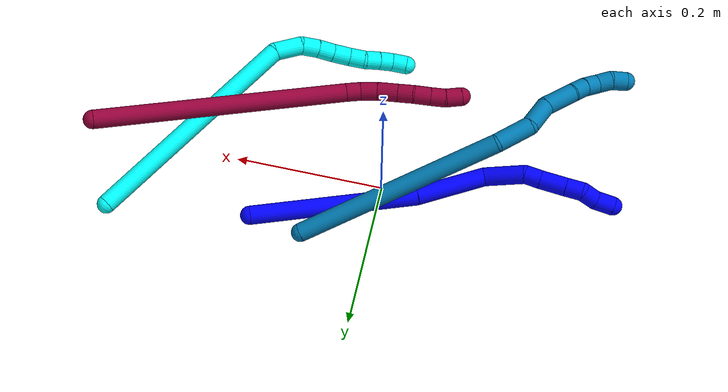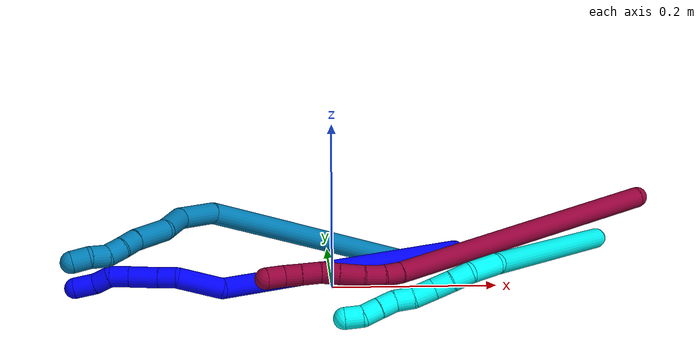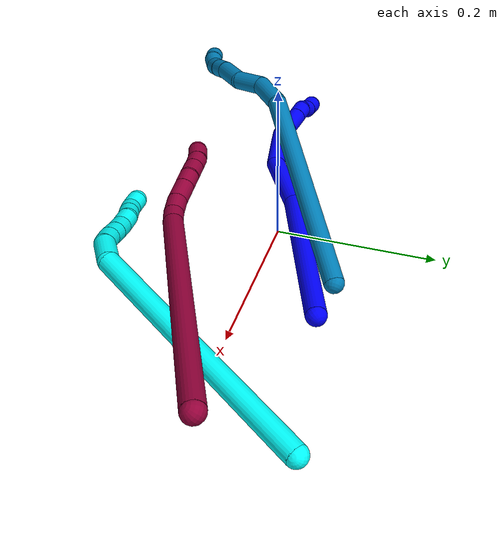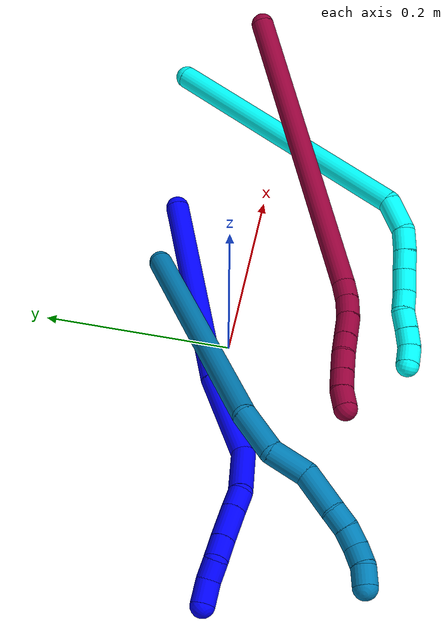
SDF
<sdf version="1.7">
 <world name="default">
  <model name="1">
   <static>0</static>
   <link name="1">
    <collision name="collision-cylinder-e_1_1_4">
     <pose>-0.03766 -0.010787 0.104622 0.102737 -0.343837 -0.017854</pose>
     <geometry><cylinder><radius>0.0125</radius><length>0.223432</length></cylinder></geometry>
     <surface>
      <friction><ode><mu>1.16</mu><mu2>1.16</mu2><slip1>0</slip1><slip2>0</slip2></ode></friction>
      <contact><ode><kp>1e+06</kp><kd>1</kd><max_vel>0</max_vel><min_depth>0.001</min_depth></ode></contact>
     </surface>
    </collision>
    <visual name="visual-cylinder-e_1_1_4">
     <pose>-0.03766 -0.010787 0.104622 0.102737 -0.343837 -0.017854</pose>
     <geometry><cylinder><radius>0.0125</radius><length>0.223432</length></cylinder></geometry>
     <material><ambient>0 0 1 1</ambient></material>
    </visual>
    <collision name="collision-cylinder-e_2_4_5">
     <pose>-0.084102 -0.024829 0.256163 0.069285 -0.184614 -0.006416</pose>
     <geometry><cylinder><radius>0.0125</radius><length>0.095689</length></cylinder></geometry>
     <surface>
      <friction><ode><mu>1.16</mu><mu2>1.16</mu2><slip1>0</slip1><slip2>0</slip2></ode></friction>
      <contact><ode><kp>1e+06</kp><kd>1</kd><max_vel>0</max_vel><min_depth>0.001</min_depth></ode></contact>
     </surface>
    </collision>
    <visual name="visual-cylinder-e_2_4_5">
     <pose>-0.084102 -0.024829 0.256163 0.069285 -0.184614 -0.006416</pose>
     <geometry><cylinder><radius>0.0125</radius><length>0.095689</length></cylinder></geometry>
     <material><ambient>0 0 1 1</ambient></material>
    </visual>
    <collision name="collision-cylinder-e_3_5_6">
     <pose>-0.106857 -0.020778 0.325967 -0.309052 -0.526792 0.08396</pose>
     <geometry><cylinder><radius>0.0125</radius><length>0.055582</length></cylinder></geometry>
     <surface>
      <friction><ode><mu>1.16</mu><mu2>1.16</mu2><slip1>0</slip1><slip2>0</slip2></ode></friction>
      <contact><ode><kp>1e+06</kp><kd>1</kd><max_vel>0</max_vel><min_depth>0.001</min_depth></ode></contact>
     </surface>
    </collision>
    <visual name="visual-cylinder-e_3_5_6">
     <pose>-0.106857 -0.020778 0.325967 -0.309052 -0.526792 0.08396</pose>
     <geometry><cylinder><radius>0.0125</radius><length>0.055582</length></cylinder></geometry>
     <material><ambient>0 0 1 1</ambient></material>
    </visual>
    <collision name="collision-cylinder-e_4_6_7">
     <pose>-0.129013 -0.013522 0.355899 0.007242 -0.859899 -0.003321</pose>
     <geometry><cylinder><radius>0.0125</radius><length>0.021598</length></cylinder></geometry>
     <surface>
      <friction><ode><mu>1.16</mu><mu2>1.16</mu2><slip1>0</slip1><slip2>0</slip2></ode></friction>
      <contact><ode><kp>1e+06</kp><kd>1</kd><max_vel>0</max_vel><min_depth>0.001</min_depth></ode></contact>
     </surface>
    </collision>
    <visual name="visual-cylinder-e_4_6_7">
     <pose>-0.129013 -0.013522 0.355899 0.007242 -0.859899 -0.003321</pose>
     <geometry><cylinder><radius>0.0125</radius><length>0.021598</length></cylinder></geometry>
     <material><ambient>0 0 1 1</ambient></material>
    </visual>
    <collision name="collision-cylinder-e_5_7_8">
     <pose>-0.15005 -0.013111 0.374789 -0.039059 -0.825895 0.017115</pose>
     <geometry><cylinder><radius>0.0125</radius><length>0.034969</length></cylinder></geometry>
     <surface>
      <friction><ode><mu>1.16</mu><mu2>1.16</mu2><slip1>0</slip1><slip2>0</slip2></ode></friction>
      <contact><ode><kp>1e+06</kp><kd>1</kd><max_vel>0</max_vel><min_depth>0.001</min_depth></ode></contact>
     </surface>
    </collision>
    <visual name="visual-cylinder-e_5_7_8">
     <pose>-0.15005 -0.013111 0.374789 -0.039059 -0.825895 0.017115</pose>
     <geometry><cylinder><radius>0.0125</radius><length>0.034969</length></cylinder></geometry>
     <material><ambient>0 0 1 1</ambient></material>
    </visual>
    <collision name="collision-cylinder-e_6_8_9">
     <pose>-0.171082 -0.01248 0.394572 -0.02117 -0.800171 0.008953</pose>
     <geometry><cylinder><radius>0.0125</radius><length>0.022799</length></cylinder></geometry>
     <surface>
      <friction><ode><mu>1.16</mu><mu2>1.16</mu2><slip1>0</slip1><slip2>0</slip2></ode></friction>
      <contact><ode><kp>1e+06</kp><kd>1</kd><max_vel>0</max_vel><min_depth>0.001</min_depth></ode></contact>
     </surface>
    </collision>
    <visual name="visual-cylinder-e_6_8_9">
     <pose>-0.171082 -0.01248 0.394572 -0.02117 -0.800171 0.008953</pose>
     <geometry><cylinder><radius>0.0125</radius><length>0.022799</length></cylinder></geometry>
     <material><ambient>0 0 1 1</ambient></material>
    </visual>
    <collision name="collision-cylinder-e_7_9_10">
     <pose>-0.186984 -0.016809 0.407802 0.704494 -0.838399 -0.324711</pose>
     <geometry><cylinder><radius>0.0125</radius><length>0.020771</length></cylinder></geometry>
     <surface>
      <friction><ode><mu>1.16</mu><mu2>1.16</mu2><slip1>0</slip1><slip2>0</slip2></ode></friction>
      <contact><ode><kp>1e+06</kp><kd>1</kd><max_vel>0</max_vel><min_depth>0.001</min_depth></ode></contact>
     </surface>
    </collision>
    <visual name="visual-cylinder-e_7_9_10">
     <pose>-0.186984 -0.016809 0.407802 0.704494 -0.838399 -0.324711</pose>
     <geometry><cylinder><radius>0.0125</radius><length>0.020771</length></cylinder></geometry>
     <material><ambient>0 0 1 1</ambient></material>
    </visual>
    <collision name="collision-cylinder-e_8_10_2">
     <pose>-0.203308 -0.023976 0.421876 0.295028 -0.752873 -0.117339</pose>
     <geometry><cylinder><radius>0.0125</radius><length>0.025159</length></cylinder></geometry>
     <surface>
      <friction><ode><mu>1.16</mu><mu2>1.16</mu2><slip1>0</slip1><slip2>0</slip2></ode></friction>
      <contact><ode><kp>1e+06</kp><kd>1</kd><max_vel>0</max_vel><min_depth>0.001</min_depth></ode></contact>
     </surface>
    </collision>
    <visual name="visual-cylinder-e_8_10_2">
     <pose>-0.203308 -0.023976 0.421876 0.295028 -0.752873 -0.117339</pose>
     <geometry><cylinder><radius>0.0125</radius><length>0.025159</length></cylinder></geometry>
     <material><ambient>0 0 1 1</ambient></material>
    </visual>
    <collision name="collision-sphere-2">
     <pose>-0.211909 -0.026645 0.430659 0 -0 0</pose>
     <geometry><sphere><radius>0.0125</radius></sphere></geometry>
     <surface>
      <friction><ode><mu>1.16</mu><mu2>1.16</mu2><slip1>0</slip1><slip2>0</slip2></ode></friction>
      <contact><ode><kp>1e+06</kp><kd>1</kd><max_vel>0</max_vel><min_depth>0.001</min_depth></ode></contact>
     </surface>
    </collision>
    <visual name="visual-sphere-2">
     <pose>-0.211909 -0.026645 0.430659 0 -0 0</pose>
     <geometry><sphere><radius>0.0125</radius></sphere></geometry>
     <material><ambient>0 0 1 1</ambient></material>
    </visual>
    <collision name="collision-sphere-10">
     <pose>-0.194706 -0.021307 0.413093 0 -0 0</pose>
     <geometry><sphere><radius>0.0125</radius></sphere></geometry>
     <surface>
      <friction><ode><mu>1.16</mu><mu2>1.16</mu2><slip1>0</slip1><slip2>0</slip2></ode></friction>
      <contact><ode><kp>1e+06</kp><kd>1</kd><max_vel>0</max_vel><min_depth>0.001</min_depth></ode></contact>
     </surface>
    </collision>
    <visual name="visual-sphere-10">
     <pose>-0.194706 -0.021307 0.413093 0 -0 0</pose>
     <geometry><sphere><radius>0.0125</radius></sphere></geometry>
     <material><ambient>0 0 1 1</ambient></material>
    </visual>
    <collision name="collision-sphere-9">
     <pose>-0.179261 -0.012312 0.402511 0 -0 0</pose>
     <geometry><sphere><radius>0.0125</radius></sphere></geometry>
     <surface>
      <friction><ode><mu>1.16</mu><mu2>1.16</mu2><slip1>0</slip1><slip2>0</slip2></ode></friction>
      <contact><ode><kp>1e+06</kp><kd>1</kd><max_vel>0</max_vel><min_depth>0.001</min_depth></ode></contact>
     </surface>
    </collision>
    <visual name="visual-sphere-9">
     <pose>-0.179261 -0.012312 0.402511 0 -0 0</pose>
     <geometry><sphere><radius>0.0125</radius></sphere></geometry>
     <material><ambient>0 0 1 1</ambient></material>
    </visual>
    <collision name="collision-sphere-4">
     <pose>-0.075319 -0.021573 0.209245 0 -0 0</pose>
     <geometry><sphere><radius>0.0125</radius></sphere></geometry>
     <surface>
      <friction><ode><mu>1.16</mu><mu2>1.16</mu2><slip1>0</slip1><slip2>0</slip2></ode></friction>
      <contact><ode><kp>1e+06</kp><kd>1</kd><max_vel>0</max_vel><min_depth>0.001</min_depth></ode></contact>
     </surface>
    </collision>
    <visual name="visual-sphere-4">
     <pose>-0.075319 -0.021573 0.209245 0 -0 0</pose>
     <geometry><sphere><radius>0.0125</radius></sphere></geometry>
     <material><ambient>0 0 1 1</ambient></material>
    </visual>
    <collision name="collision-sphere-1">
     <geometry><sphere><radius>0.0125</radius></sphere></geometry>
     <surface>
      <friction><ode><mu>1.16</mu><mu2>1.16</mu2><slip1>0</slip1><slip2>0</slip2></ode></friction>
      <contact><ode><kp>1e+06</kp><kd>1</kd><max_vel>0</max_vel><min_depth>0.001</min_depth></ode></contact>
     </surface>
    </collision>
    <visual name="visual-sphere-1">
     <geometry><sphere><radius>0.0125</radius></sphere></geometry>
     <material><ambient>0 0 1 1</ambient></material>
    </visual>
    <collision name="collision-sphere-8">
     <pose>-0.162903 -0.012648 0.386632 0 -0 0</pose>
     <geometry><sphere><radius>0.0125</radius></sphere></geometry>
     <surface>
      <friction><ode><mu>1.16</mu><mu2>1.16</mu2><slip1>0</slip1><slip2>0</slip2></ode></friction>
      <contact><ode><kp>1e+06</kp><kd>1</kd><max_vel>0</max_vel><min_depth>0.001</min_depth></ode></contact>
     </surface>
    </collision>
    <visual name="visual-sphere-8">
     <pose>-0.162903 -0.012648 0.386632 0 -0 0</pose>
     <geometry><sphere><radius>0.0125</radius></sphere></geometry>
     <material><ambient>0 0 1 1</ambient></material>
    </visual>
    <collision name="collision-sphere-5">
     <pose>-0.092885 -0.028085 0.303082 0 -0 0</pose>
     <geometry><sphere><radius>0.0125</radius></sphere></geometry>
     <surface>
      <friction><ode><mu>1.16</mu><mu2>1.16</mu2><slip1>0</slip1><slip2>0</slip2></ode></friction>
      <contact><ode><kp>1e+06</kp><kd>1</kd><max_vel>0</max_vel><min_depth>0.001</min_depth></ode></contact>
     </surface>
    </collision>
    <visual name="visual-sphere-5">
     <pose>-0.092885 -0.028085 0.303082 0 -0 0</pose>
     <geometry><sphere><radius>0.0125</radius></sphere></geometry>
     <material><ambient>0 0 1 1</ambient></material>
    </visual>
    <collision name="collision-sphere-6">
     <pose>-0.120829 -0.013471 0.348852 0 -0 0</pose>
     <geometry><sphere><radius>0.0125</radius></sphere></geometry>
     <surface>
      <friction><ode><mu>1.16</mu><mu2>1.16</mu2><slip1>0</slip1><slip2>0</slip2></ode></friction>
      <contact><ode><kp>1e+06</kp><kd>1</kd><max_vel>0</max_vel><min_depth>0.001</min_depth></ode></contact>
     </surface>
    </collision>
    <visual name="visual-sphere-6">
     <pose>-0.120829 -0.013471 0.348852 0 -0 0</pose>
     <geometry><sphere><radius>0.0125</radius></sphere></geometry>
     <material><ambient>0 0 1 1</ambient></material>
    </visual>
    <collision name="collision-sphere-7">
     <pose>-0.137196 -0.013574 0.362945 0 -0 0</pose>
     <geometry><sphere><radius>0.0125</radius></sphere></geometry>
     <surface>
      <friction><ode><mu>1.16</mu><mu2>1.16</mu2><slip1>0</slip1><slip2>0</slip2></ode></friction>
      <contact><ode><kp>1e+06</kp><kd>1</kd><max_vel>0</max_vel><min_depth>0.001</min_depth></ode></contact>
     </surface>
    </collision>
    <visual name="visual-sphere-7">
     <pose>-0.137196 -0.013574 0.362945 0 -0 0</pose>
     <geometry><sphere><radius>0.0125</radius></sphere></geometry>
     <material><ambient>0 0 1 1</ambient></material>
    </visual>
    <inertial>
     <pose>-0.086669 -0.015856 0.229759 0 -0 0</pose>
     <mass>0.5</mass>
     <inertia>
      <ixx>0.000949</ixx>
      <ixy>0</ixy>
      <ixz>0</ixz>
      <iyy>0.001021</iyy>
      <iyz>0</iyz>
      <izz>0.000474</izz>
     </inertia>
    </inertial>
   </link>
   <pose>0.157966 0.089884 0.022981 1.48915 -0.088796 -0.851426</pose>
  </model>
  <model name="3">
   <static>0</static>
   <link name="3">
    <collision name="collision-cylinder-e_1_1_4">
     <pose>-0.094657 -0.115623 -0.038497 1.8922 -0.660398 -0.887492</pose>
     <geometry><cylinder><radius>0.0125</radius><length>0.308615</length></cylinder></geometry>
     <surface>
      <friction><ode><mu>1.16</mu><mu2>1.16</mu2><slip1>0</slip1><slip2>0</slip2></ode></friction>
      <contact><ode><kp>1e+06</kp><kd>1</kd><max_vel>0</max_vel><min_depth>0.001</min_depth></ode></contact>
     </surface>
    </collision>
    <visual name="visual-cylinder-e_1_1_4">
     <pose>-0.094657 -0.115623 -0.038497 1.8922 -0.660398 -0.887492</pose>
     <geometry><cylinder><radius>0.0125</radius><length>0.308615</length></cylinder></geometry>
     <material><ambient>0.003922 1 0.996078 1</ambient></material>
    </visual>
    <collision name="collision-cylinder-e_2_4_5">
     <pose>-0.200328 -0.240581 -0.089527 2.50141 -0.613937 -1.52607</pose>
     <geometry><cylinder><radius>0.0125</radius><length>0.038236</length></cylinder></geometry>
     <surface>
      <friction><ode><mu>1.16</mu><mu2>1.16</mu2><slip1>0</slip1><slip2>0</slip2></ode></friction>
      <contact><ode><kp>1e+06</kp><kd>1</kd><max_vel>0</max_vel><min_depth>0.001</min_depth></ode></contact>
     </surface>
    </collision>
    <visual name="visual-cylinder-e_2_4_5">
     <pose>-0.200328 -0.240581 -0.089527 2.50141 -0.613937 -1.52607</pose>
     <geometry><cylinder><radius>0.0125</radius><length>0.038236</length></cylinder></geometry>
     <material><ambient>0.003922 1 0.996078 1</ambient></material>
    </visual>
    <collision name="collision-cylinder-e_3_5_6">
     <pose>-0.216016 -0.252771 -0.112659 2.87846 -0.402575 -1.99091</pose>
     <geometry><cylinder><radius>0.0125</radius><length>0.023864</length></cylinder></geometry>
     <surface>
      <friction><ode><mu>1.16</mu><mu2>1.16</mu2><slip1>0</slip1><slip2>0</slip2></ode></friction>
      <contact><ode><kp>1e+06</kp><kd>1</kd><max_vel>0</max_vel><min_depth>0.001</min_depth></ode></contact>
     </surface>
    </collision>
    <visual name="visual-cylinder-e_3_5_6">
     <pose>-0.216016 -0.252771 -0.112659 2.87846 -0.402575 -1.99091</pose>
     <geometry><cylinder><radius>0.0125</radius><length>0.023864</length></cylinder></geometry>
     <material><ambient>0.003922 1 0.996078 1</ambient></material>
    </visual>
    <collision name="collision-cylinder-e_4_6_7">
     <pose>-0.224608 -0.257165 -0.133328 2.99003 -0.367172 -2.36525</pose>
     <geometry><cylinder><radius>0.0125</radius><length>0.021825</length></cylinder></geometry>
     <surface>
      <friction><ode><mu>1.16</mu><mu2>1.16</mu2><slip1>0</slip1><slip2>0</slip2></ode></friction>
      <contact><ode><kp>1e+06</kp><kd>1</kd><max_vel>0</max_vel><min_depth>0.001</min_depth></ode></contact>
     </surface>
    </collision>
    <visual name="visual-cylinder-e_4_6_7">
     <pose>-0.224608 -0.257165 -0.133328 2.99003 -0.367172 -2.36525</pose>
     <geometry><cylinder><radius>0.0125</radius><length>0.021825</length></cylinder></geometry>
     <material><ambient>0.003922 1 0.996078 1</ambient></material>
    </visual>
    <collision name="collision-cylinder-e_5_7_8">
     <pose>-0.233245 -0.260863 -0.154565 2.95052 -0.393285 -2.2449</pose>
     <geometry><cylinder><radius>0.0125</radius><length>0.024634</length></cylinder></geometry>
     <surface>
      <friction><ode><mu>1.16</mu><mu2>1.16</mu2><slip1>0</slip1><slip2>0</slip2></ode></friction>
      <contact><ode><kp>1e+06</kp><kd>1</kd><max_vel>0</max_vel><min_depth>0.001</min_depth></ode></contact>
     </surface>
    </collision>
    <visual name="visual-cylinder-e_5_7_8">
     <pose>-0.233245 -0.260863 -0.154565 2.95052 -0.393285 -2.2449</pose>
     <geometry><cylinder><radius>0.0125</radius><length>0.024634</length></cylinder></geometry>
     <material><ambient>0.003922 1 0.996078 1</ambient></material>
    </visual>
    <collision name="collision-cylinder-e_6_8_9">
     <pose>-0.243979 -0.263433 -0.174745 3.09616 -0.588034 -2.9918</pose>
     <geometry><cylinder><radius>0.0125</radius><length>0.021681</length></cylinder></geometry>
     <surface>
      <friction><ode><mu>1.16</mu><mu2>1.16</mu2><slip1>0</slip1><slip2>0</slip2></ode></friction>
      <contact><ode><kp>1e+06</kp><kd>1</kd><max_vel>0</max_vel><min_depth>0.001</min_depth></ode></contact>
     </surface>
    </collision>
    <visual name="visual-cylinder-e_6_8_9">
     <pose>-0.243979 -0.263433 -0.174745 3.09616 -0.588034 -2.9918</pose>
     <geometry><cylinder><radius>0.0125</radius><length>0.021681</length></cylinder></geometry>
     <material><ambient>0.003922 1 0.996078 1</ambient></material>
    </visual>
    <collision name="collision-cylinder-e_7_9_10">
     <pose>-0.254265 -0.267314 -0.192274 2.75456 -0.434798 -1.69023</pose>
     <geometry><cylinder><radius>0.0125</radius><length>0.020284</length></cylinder></geometry>
     <surface>
      <friction><ode><mu>1.16</mu><mu2>1.16</mu2><slip1>0</slip1><slip2>0</slip2></ode></friction>
      <contact><ode><kp>1e+06</kp><kd>1</kd><max_vel>0</max_vel><min_depth>0.001</min_depth></ode></contact>
     </surface>
    </collision>
    <visual name="visual-cylinder-e_7_9_10">
     <pose>-0.254265 -0.267314 -0.192274 2.75456 -0.434798 -1.69023</pose>
     <geometry><cylinder><radius>0.0125</radius><length>0.020284</length></cylinder></geometry>
     <material><ambient>0.003922 1 0.996078 1</ambient></material>
    </visual>
    <collision name="collision-cylinder-e_8_10_11">
     <pose>-0.262484 -0.273905 -0.209476 2.7968 -0.404207 -1.73282</pose>
     <geometry><cylinder><radius>0.0125</radius><length>0.020073</length></cylinder></geometry>
     <surface>
      <friction><ode><mu>1.16</mu><mu2>1.16</mu2><slip1>0</slip1><slip2>0</slip2></ode></friction>
      <contact><ode><kp>1e+06</kp><kd>1</kd><max_vel>0</max_vel><min_depth>0.001</min_depth></ode></contact>
     </surface>
    </collision>
    <visual name="visual-cylinder-e_8_10_11">
     <pose>-0.262484 -0.273905 -0.209476 2.7968 -0.404207 -1.73282</pose>
     <geometry><cylinder><radius>0.0125</radius><length>0.020073</length></cylinder></geometry>
     <material><ambient>0.003922 1 0.996078 1</ambient></material>
    </visual>
    <collision name="collision-cylinder-e_9_11_2">
     <pose>-0.272549 -0.276958 -0.226564 -3.13369 -0.629278 3.11731</pose>
     <geometry><cylinder><radius>0.0125</radius><length>0.020789</length></cylinder></geometry>
     <surface>
      <friction><ode><mu>1.16</mu><mu2>1.16</mu2><slip1>0</slip1><slip2>0</slip2></ode></friction>
      <contact><ode><kp>1e+06</kp><kd>1</kd><max_vel>0</max_vel><min_depth>0.001</min_depth></ode></contact>
     </surface>
    </collision>
    <visual name="visual-cylinder-e_9_11_2">
     <pose>-0.272549 -0.276958 -0.226564 -3.13369 -0.629278 3.11731</pose>
     <geometry><cylinder><radius>0.0125</radius><length>0.020789</length></cylinder></geometry>
     <material><ambient>0.003922 1 0.996078 1</ambient></material>
    </visual>
    <collision name="collision-sphere-2">
     <pose>-0.278667 -0.276892 -0.234967 0 -0 0</pose>
     <geometry><sphere><radius>0.0125</radius></sphere></geometry>
     <surface>
      <friction><ode><mu>1.16</mu><mu2>1.16</mu2><slip1>0</slip1><slip2>0</slip2></ode></friction>
      <contact><ode><kp>1e+06</kp><kd>1</kd><max_vel>0</max_vel><min_depth>0.001</min_depth></ode></contact>
     </surface>
    </collision>
    <visual name="visual-sphere-2">
     <pose>-0.278667 -0.276892 -0.234967 0 -0 0</pose>
     <geometry><sphere><radius>0.0125</radius></sphere></geometry>
     <material><ambient>0.003922 1 0.996078 1</ambient></material>
    </visual>
    <collision name="collision-sphere-11">
     <pose>-0.266431 -0.277024 -0.218161 0 -0 0</pose>
     <geometry><sphere><radius>0.0125</radius></sphere></geometry>
     <surface>
      <friction><ode><mu>1.16</mu><mu2>1.16</mu2><slip1>0</slip1><slip2>0</slip2></ode></friction>
      <contact><ode><kp>1e+06</kp><kd>1</kd><max_vel>0</max_vel><min_depth>0.001</min_depth></ode></contact>
     </surface>
    </collision>
    <visual name="visual-sphere-11">
     <pose>-0.266431 -0.277024 -0.218161 0 -0 0</pose>
     <geometry><sphere><radius>0.0125</radius></sphere></geometry>
     <material><ambient>0.003922 1 0.996078 1</ambient></material>
    </visual>
    <collision name="collision-sphere-10">
     <pose>-0.258537 -0.270786 -0.200791 0 -0 0</pose>
     <geometry><sphere><radius>0.0125</radius></sphere></geometry>
     <surface>
      <friction><ode><mu>1.16</mu><mu2>1.16</mu2><slip1>0</slip1><slip2>0</slip2></ode></friction>
      <contact><ode><kp>1e+06</kp><kd>1</kd><max_vel>0</max_vel><min_depth>0.001</min_depth></ode></contact>
     </surface>
    </collision>
    <visual name="visual-sphere-10">
     <pose>-0.258537 -0.270786 -0.200791 0 -0 0</pose>
     <geometry><sphere><radius>0.0125</radius></sphere></geometry>
     <material><ambient>0.003922 1 0.996078 1</ambient></material>
    </visual>
    <collision name="collision-sphere-9">
     <pose>-0.249993 -0.263843 -0.183756 0 -0 0</pose>
     <geometry><sphere><radius>0.0125</radius></sphere></geometry>
     <surface>
      <friction><ode><mu>1.16</mu><mu2>1.16</mu2><slip1>0</slip1><slip2>0</slip2></ode></friction>
      <contact><ode><kp>1e+06</kp><kd>1</kd><max_vel>0</max_vel><min_depth>0.001</min_depth></ode></contact>
     </surface>
    </collision>
    <visual name="visual-sphere-9">
     <pose>-0.249993 -0.263843 -0.183756 0 -0 0</pose>
     <geometry><sphere><radius>0.0125</radius></sphere></geometry>
     <material><ambient>0.003922 1 0.996078 1</ambient></material>
    </visual>
    <collision name="collision-sphere-4">
     <pose>-0.189314 -0.231247 -0.076994 0 -0 0</pose>
     <geometry><sphere><radius>0.0125</radius></sphere></geometry>
     <surface>
      <friction><ode><mu>1.16</mu><mu2>1.16</mu2><slip1>0</slip1><slip2>0</slip2></ode></friction>
      <contact><ode><kp>1e+06</kp><kd>1</kd><max_vel>0</max_vel><min_depth>0.001</min_depth></ode></contact>
     </surface>
    </collision>
    <visual name="visual-sphere-4">
     <pose>-0.189314 -0.231247 -0.076994 0 -0 0</pose>
     <geometry><sphere><radius>0.0125</radius></sphere></geometry>
     <material><ambient>0.003922 1 0.996078 1</ambient></material>
    </visual>
    <collision name="collision-sphere-1">
     <geometry><sphere><radius>0.0125</radius></sphere></geometry>
     <surface>
      <friction><ode><mu>1.16</mu><mu2>1.16</mu2><slip1>0</slip1><slip2>0</slip2></ode></friction>
      <contact><ode><kp>1e+06</kp><kd>1</kd><max_vel>0</max_vel><min_depth>0.001</min_depth></ode></contact>
     </surface>
    </collision>
    <visual name="visual-sphere-1">
     <geometry><sphere><radius>0.0125</radius></sphere></geometry>
     <material><ambient>0.003922 1 0.996078 1</ambient></material>
    </visual>
    <collision name="collision-sphere-8">
     <pose>-0.237966 -0.263023 -0.165735 0 -0 0</pose>
     <geometry><sphere><radius>0.0125</radius></sphere></geometry>
     <surface>
      <friction><ode><mu>1.16</mu><mu2>1.16</mu2><slip1>0</slip1><slip2>0</slip2></ode></friction>
      <contact><ode><kp>1e+06</kp><kd>1</kd><max_vel>0</max_vel><min_depth>0.001</min_depth></ode></contact>
     </surface>
    </collision>
    <visual name="visual-sphere-8">
     <pose>-0.237966 -0.263023 -0.165735 0 -0 0</pose>
     <geometry><sphere><radius>0.0125</radius></sphere></geometry>
     <material><ambient>0.003922 1 0.996078 1</ambient></material>
    </visual>
    <collision name="collision-sphere-5">
     <pose>-0.211341 -0.249916 -0.102059 0 -0 0</pose>
     <geometry><sphere><radius>0.0125</radius></sphere></geometry>
     <surface>
      <friction><ode><mu>1.16</mu><mu2>1.16</mu2><slip1>0</slip1><slip2>0</slip2></ode></friction>
      <contact><ode><kp>1e+06</kp><kd>1</kd><max_vel>0</max_vel><min_depth>0.001</min_depth></ode></contact>
     </surface>
    </collision>
    <visual name="visual-sphere-5">
     <pose>-0.211341 -0.249916 -0.102059 0 -0 0</pose>
     <geometry><sphere><radius>0.0125</radius></sphere></geometry>
     <material><ambient>0.003922 1 0.996078 1</ambient></material>
    </visual>
    <collision name="collision-sphere-6">
     <pose>-0.220691 -0.255627 -0.123259 0 -0 0</pose>
     <geometry><sphere><radius>0.0125</radius></sphere></geometry>
     <surface>
      <friction><ode><mu>1.16</mu><mu2>1.16</mu2><slip1>0</slip1><slip2>0</slip2></ode></friction>
      <contact><ode><kp>1e+06</kp><kd>1</kd><max_vel>0</max_vel><min_depth>0.001</min_depth></ode></contact>
     </surface>
    </collision>
    <visual name="visual-sphere-6">
     <pose>-0.220691 -0.255627 -0.123259 0 -0 0</pose>
     <geometry><sphere><radius>0.0125</radius></sphere></geometry>
     <material><ambient>0.003922 1 0.996078 1</ambient></material>
    </visual>
    <collision name="collision-sphere-7">
     <pose>-0.228525 -0.258702 -0.143396 0 -0 0</pose>
     <geometry><sphere><radius>0.0125</radius></sphere></geometry>
     <surface>
      <friction><ode><mu>1.16</mu><mu2>1.16</mu2><slip1>0</slip1><slip2>0</slip2></ode></friction>
      <contact><ode><kp>1e+06</kp><kd>1</kd><max_vel>0</max_vel><min_depth>0.001</min_depth></ode></contact>
     </surface>
    </collision>
    <visual name="visual-sphere-7">
     <pose>-0.228525 -0.258702 -0.143396 0 -0 0</pose>
     <geometry><sphere><radius>0.0125</radius></sphere></geometry>
     <material><ambient>0.003922 1 0.996078 1</ambient></material>
    </visual>
    <inertial>
     <pose>-0.148114 -0.170684 -0.082627 0 -0 0</pose>
     <mass>0.5</mass>
     <inertia>
      <ixx>-0.00032</ixx>
      <ixy>0</ixy>
      <ixz>0</ixz>
      <iyy>-0.000912</iyy>
      <iyz>0</iyz>
      <izz>0.00335</izz>
     </inertia>
    </inertial>
   </link>
   <pose>0.344617 0.118759 0.029815 0.35866 0.814144 0.343144</pose>
  </model>
  <model name="8">
   <static>0</static>
   <link name="8">
    <collision name="collision-cylinder-e_1_1_4">
     <pose>-0.123601 -0.113253 -0.031745 1.84409 -0.810196 -1.02939</pose>
     <geometry><cylinder><radius>0.0125</radius><length>0.34124</length></cylinder></geometry>
     <surface>
      <friction><ode><mu>1.16</mu><mu2>1.16</mu2><slip1>0</slip1><slip2>0</slip2></ode></friction>
      <contact><ode><kp>1e+06</kp><kd>1</kd><max_vel>0</max_vel><min_depth>0.001</min_depth></ode></contact>
     </surface>
    </collision>
    <visual name="visual-cylinder-e_1_1_4">
     <pose>-0.123601 -0.113253 -0.031745 1.84409 -0.810196 -1.02939</pose>
     <geometry><cylinder><radius>0.0125</radius><length>0.34124</length></cylinder></geometry>
     <material><ambient>0.584314 0 0.227451 1</ambient></material>
    </visual>
    <collision name="collision-cylinder-e_2_4_5">
     <pose>-0.255579 -0.232326 -0.065299 1.87216 -0.941842 -1.20987</pose>
     <geometry><cylinder><radius>0.0125</radius><length>0.020718</length></cylinder></geometry>
     <surface>
      <friction><ode><mu>1.16</mu><mu2>1.16</mu2><slip1>0</slip1><slip2>0</slip2></ode></friction>
      <contact><ode><kp>1e+06</kp><kd>1</kd><max_vel>0</max_vel><min_depth>0.001</min_depth></ode></contact>
     </surface>
    </collision>
    <visual name="visual-cylinder-e_2_4_5">
     <pose>-0.255579 -0.232326 -0.065299 1.87216 -0.941842 -1.20987</pose>
     <geometry><cylinder><radius>0.0125</radius><length>0.020718</length></cylinder></geometry>
     <material><ambient>0.584314 0 0.227451 1</ambient></material>
    </visual>
    <collision name="collision-cylinder-e_3_5_6">
     <pose>-0.274673 -0.242826 -0.069325 2.01304 -1.12063 -1.56202</pose>
     <geometry><cylinder><radius>0.0125</radius><length>0.023807</length></cylinder></geometry>
     <surface>
      <friction><ode><mu>1.16</mu><mu2>1.16</mu2><slip1>0</slip1><slip2>0</slip2></ode></friction>
      <contact><ode><kp>1e+06</kp><kd>1</kd><max_vel>0</max_vel><min_depth>0.001</min_depth></ode></contact>
     </surface>
    </collision>
    <visual name="visual-cylinder-e_3_5_6">
     <pose>-0.274673 -0.242826 -0.069325 2.01304 -1.12063 -1.56202</pose>
     <geometry><cylinder><radius>0.0125</radius><length>0.023807</length></cylinder></geometry>
     <material><ambient>0.584314 0 0.227451 1</ambient></material>
    </visual>
    <collision name="collision-cylinder-e_4_6_7">
     <pose>-0.298907 -0.250997 -0.074814 2.32409 -1.23064 -2.04209</pose>
     <geometry><cylinder><radius>0.0125</radius><length>0.028676</length></cylinder></geometry>
     <surface>
      <friction><ode><mu>1.16</mu><mu2>1.16</mu2><slip1>0</slip1><slip2>0</slip2></ode></friction>
      <contact><ode><kp>1e+06</kp><kd>1</kd><max_vel>0</max_vel><min_depth>0.001</min_depth></ode></contact>
     </surface>
    </collision>
    <visual name="visual-cylinder-e_4_6_7">
     <pose>-0.298907 -0.250997 -0.074814 2.32409 -1.23064 -2.04209</pose>
     <geometry><cylinder><radius>0.0125</radius><length>0.028676</length></cylinder></geometry>
     <material><ambient>0.584314 0 0.227451 1</ambient></material>
    </visual>
    <collision name="collision-cylinder-e_5_7_8">
     <pose>-0.322263 -0.257073 -0.080461 2.3135 -1.228 -2.02665</pose>
     <geometry><cylinder><radius>0.0125</radius><length>0.020896</length></cylinder></geometry>
     <surface>
      <friction><ode><mu>1.16</mu><mu2>1.16</mu2><slip1>0</slip1><slip2>0</slip2></ode></friction>
      <contact><ode><kp>1e+06</kp><kd>1</kd><max_vel>0</max_vel><min_depth>0.001</min_depth></ode></contact>
     </surface>
    </collision>
    <visual name="visual-cylinder-e_5_7_8">
     <pose>-0.322263 -0.257073 -0.080461 2.3135 -1.228 -2.02665</pose>
     <geometry><cylinder><radius>0.0125</radius><length>0.020896</length></cylinder></geometry>
     <material><ambient>0.584314 0 0.227451 1</ambient></material>
    </visual>
    <collision name="collision-cylinder-e_6_8_9">
     <pose>-0.341863 -0.263943 -0.086483 2.2762 -1.04788 -1.79286</pose>
     <geometry><cylinder><radius>0.0125</radius><length>0.02253</length></cylinder></geometry>
     <surface>
      <friction><ode><mu>1.16</mu><mu2>1.16</mu2><slip1>0</slip1><slip2>0</slip2></ode></friction>
      <contact><ode><kp>1e+06</kp><kd>1</kd><max_vel>0</max_vel><min_depth>0.001</min_depth></ode></contact>
     </surface>
    </collision>
    <visual name="visual-cylinder-e_6_8_9">
     <pose>-0.341863 -0.263943 -0.086483 2.2762 -1.04788 -1.79286</pose>
     <geometry><cylinder><radius>0.0125</radius><length>0.02253</length></cylinder></geometry>
     <material><ambient>0.584314 0 0.227451 1</ambient></material>
    </visual>
    <collision name="collision-cylinder-e_7_9_10">
     <pose>-0.360469 -0.272116 -0.093182 2.23609 -1.06118 -1.7571</pose>
     <geometry><cylinder><radius>0.0125</radius><length>0.020268</length></cylinder></geometry>
     <surface>
      <friction><ode><mu>1.16</mu><mu2>1.16</mu2><slip1>0</slip1><slip2>0</slip2></ode></friction>
      <contact><ode><kp>1e+06</kp><kd>1</kd><max_vel>0</max_vel><min_depth>0.001</min_depth></ode></contact>
     </surface>
    </collision>
    <visual name="visual-cylinder-e_7_9_10">
     <pose>-0.360469 -0.272116 -0.093182 2.23609 -1.06118 -1.7571</pose>
     <geometry><cylinder><radius>0.0125</radius><length>0.020268</length></cylinder></geometry>
     <material><ambient>0.584314 0 0.227451 1</ambient></material>
    </visual>
    <collision name="collision-cylinder-e_8_10_2">
     <pose>-0.378361 -0.28191 -0.097917 1.84847 -0.974487 -1.22411</pose>
     <geometry><cylinder><radius>0.0125</radius><length>0.021865</length></cylinder></geometry>
     <surface>
      <friction><ode><mu>1.16</mu><mu2>1.16</mu2><slip1>0</slip1><slip2>0</slip2></ode></friction>
      <contact><ode><kp>1e+06</kp><kd>1</kd><max_vel>0</max_vel><min_depth>0.001</min_depth></ode></contact>
     </surface>
    </collision>
    <visual name="visual-cylinder-e_8_10_2">
     <pose>-0.378361 -0.28191 -0.097917 1.84847 -0.974487 -1.22411</pose>
     <geometry><cylinder><radius>0.0125</radius><length>0.021865</length></cylinder></geometry>
     <material><ambient>0.584314 0 0.227451 1</ambient></material>
    </visual>
    <collision name="collision-sphere-2">
     <pose>-0.387407 -0.287814 -0.0996 0 -0 0</pose>
     <geometry><sphere><radius>0.0125</radius></sphere></geometry>
     <surface>
      <friction><ode><mu>1.16</mu><mu2>1.16</mu2><slip1>0</slip1><slip2>0</slip2></ode></friction>
      <contact><ode><kp>1e+06</kp><kd>1</kd><max_vel>0</max_vel><min_depth>0.001</min_depth></ode></contact>
     </surface>
    </collision>
    <visual name="visual-sphere-2">
     <pose>-0.387407 -0.287814 -0.0996 0 -0 0</pose>
     <geometry><sphere><radius>0.0125</radius></sphere></geometry>
     <material><ambient>0.584314 0 0.227451 1</ambient></material>
    </visual>
    <collision name="collision-sphere-10">
     <pose>-0.369315 -0.276005 -0.096234 0 -0 0</pose>
     <geometry><sphere><radius>0.0125</radius></sphere></geometry>
     <surface>
      <friction><ode><mu>1.16</mu><mu2>1.16</mu2><slip1>0</slip1><slip2>0</slip2></ode></friction>
      <contact><ode><kp>1e+06</kp><kd>1</kd><max_vel>0</max_vel><min_depth>0.001</min_depth></ode></contact>
     </surface>
    </collision>
    <visual name="visual-sphere-10">
     <pose>-0.369315 -0.276005 -0.096234 0 -0 0</pose>
     <geometry><sphere><radius>0.0125</radius></sphere></geometry>
     <material><ambient>0.584314 0 0.227451 1</ambient></material>
    </visual>
    <collision name="collision-sphere-9">
     <pose>-0.351622 -0.268226 -0.09013 0 -0 0</pose>
     <geometry><sphere><radius>0.0125</radius></sphere></geometry>
     <surface>
      <friction><ode><mu>1.16</mu><mu2>1.16</mu2><slip1>0</slip1><slip2>0</slip2></ode></friction>
      <contact><ode><kp>1e+06</kp><kd>1</kd><max_vel>0</max_vel><min_depth>0.001</min_depth></ode></contact>
     </surface>
    </collision>
    <visual name="visual-sphere-9">
     <pose>-0.351622 -0.268226 -0.09013 0 -0 0</pose>
     <geometry><sphere><radius>0.0125</radius></sphere></geometry>
     <material><ambient>0.584314 0 0.227451 1</ambient></material>
    </visual>
    <collision name="collision-sphere-4">
     <pose>-0.247202 -0.226506 -0.06349 0 -0 0</pose>
     <geometry><sphere><radius>0.0125</radius></sphere></geometry>
     <surface>
      <friction><ode><mu>1.16</mu><mu2>1.16</mu2><slip1>0</slip1><slip2>0</slip2></ode></friction>
      <contact><ode><kp>1e+06</kp><kd>1</kd><max_vel>0</max_vel><min_depth>0.001</min_depth></ode></contact>
     </surface>
    </collision>
    <visual name="visual-sphere-4">
     <pose>-0.247202 -0.226506 -0.06349 0 -0 0</pose>
     <geometry><sphere><radius>0.0125</radius></sphere></geometry>
     <material><ambient>0.584314 0 0.227451 1</ambient></material>
    </visual>
    <collision name="collision-sphere-1">
     <geometry><sphere><radius>0.0125</radius></sphere></geometry>
     <surface>
      <friction><ode><mu>1.16</mu><mu2>1.16</mu2><slip1>0</slip1><slip2>0</slip2></ode></friction>
      <contact><ode><kp>1e+06</kp><kd>1</kd><max_vel>0</max_vel><min_depth>0.001</min_depth></ode></contact>
     </surface>
    </collision>
    <visual name="visual-sphere-1">
     <geometry><sphere><radius>0.0125</radius></sphere></geometry>
     <material><ambient>0.584314 0 0.227451 1</ambient></material>
    </visual>
    <collision name="collision-sphere-8">
     <pose>-0.332104 -0.25966 -0.082836 0 -0 0</pose>
     <geometry><sphere><radius>0.0125</radius></sphere></geometry>
     <surface>
      <friction><ode><mu>1.16</mu><mu2>1.16</mu2><slip1>0</slip1><slip2>0</slip2></ode></friction>
      <contact><ode><kp>1e+06</kp><kd>1</kd><max_vel>0</max_vel><min_depth>0.001</min_depth></ode></contact>
     </surface>
    </collision>
    <visual name="visual-sphere-8">
     <pose>-0.332104 -0.25966 -0.082836 0 -0 0</pose>
     <geometry><sphere><radius>0.0125</radius></sphere></geometry>
     <material><ambient>0.584314 0 0.227451 1</ambient></material>
    </visual>
    <collision name="collision-sphere-5">
     <pose>-0.263955 -0.238145 -0.067108 0 -0 0</pose>
     <geometry><sphere><radius>0.0125</radius></sphere></geometry>
     <surface>
      <friction><ode><mu>1.16</mu><mu2>1.16</mu2><slip1>0</slip1><slip2>0</slip2></ode></friction>
      <contact><ode><kp>1e+06</kp><kd>1</kd><max_vel>0</max_vel><min_depth>0.001</min_depth></ode></contact>
     </surface>
    </collision>
    <visual name="visual-sphere-5">
     <pose>-0.263955 -0.238145 -0.067108 0 -0 0</pose>
     <geometry><sphere><radius>0.0125</radius></sphere></geometry>
     <material><ambient>0.584314 0 0.227451 1</ambient></material>
    </visual>
    <collision name="collision-sphere-6">
     <pose>-0.28539 -0.247507 -0.071541 0 -0 0</pose>
     <geometry><sphere><radius>0.0125</radius></sphere></geometry>
     <surface>
      <friction><ode><mu>1.16</mu><mu2>1.16</mu2><slip1>0</slip1><slip2>0</slip2></ode></friction>
      <contact><ode><kp>1e+06</kp><kd>1</kd><max_vel>0</max_vel><min_depth>0.001</min_depth></ode></contact>
     </surface>
    </collision>
    <visual name="visual-sphere-6">
     <pose>-0.28539 -0.247507 -0.071541 0 -0 0</pose>
     <geometry><sphere><radius>0.0125</radius></sphere></geometry>
     <material><ambient>0.584314 0 0.227451 1</ambient></material>
    </visual>
    <collision name="collision-sphere-7">
     <pose>-0.312423 -0.254486 -0.078086 0 -0 0</pose>
     <geometry><sphere><radius>0.0125</radius></sphere></geometry>
     <surface>
      <friction><ode><mu>1.16</mu><mu2>1.16</mu2><slip1>0</slip1><slip2>0</slip2></ode></friction>
      <contact><ode><kp>1e+06</kp><kd>1</kd><max_vel>0</max_vel><min_depth>0.001</min_depth></ode></contact>
     </surface>
    </collision>
    <visual name="visual-sphere-7">
     <pose>-0.312423 -0.254486 -0.078086 0 -0 0</pose>
     <geometry><sphere><radius>0.0125</radius></sphere></geometry>
     <material><ambient>0.584314 0 0.227451 1</ambient></material>
    </visual>
    <inertial>
     <pose>-0.185197 -0.158872 -0.047281 0 -0 0</pose>
     <mass>0.5</mass>
     <inertia>
      <ixx>-0.000819</ixx>
      <ixy>0</ixy>
      <ixz>0</ixz>
      <iyy>-0.000457</iyy>
      <iyz>0</iyz>
      <izz>0.004624</izz>
     </inertia>
    </inertial>
   </link>
   <pose>0.378325 0.036876 0.100421 0.58595 0.442277 -0.025765</pose>
  </model>
  <model name="9">
   <static>0</static>
   <link name="9">
    <collision name="collision-cylinder-e_1_1_4">
     <pose>-0.038995 -0.061696 0.121274 0.47061 -0.279107 -0.067327</pose>
     <geometry><cylinder><radius>0.0125</radius><length>0.283086</length></cylinder></geometry>
     <surface>
      <friction><ode><mu>1.16</mu><mu2>1.16</mu2><slip1>0</slip1><slip2>0</slip2></ode></friction>
      <contact><ode><kp>1e+06</kp><kd>1</kd><max_vel>0</max_vel><min_depth>0.001</min_depth></ode></contact>
     </surface>
    </collision>
    <visual name="visual-cylinder-e_1_1_4">
     <pose>-0.038995 -0.061696 0.121274 0.47061 -0.279107 -0.067327</pose>
     <geometry><cylinder><radius>0.0125</radius><length>0.283086</length></cylinder></geometry>
     <material><ambient>0 0.490196 0.709804 1</ambient></material>
    </visual>
    <collision name="collision-cylinder-e_2_4_5">
     <pose>-0.091522 -0.137116 0.258493 0.71066 -0.571626 -0.217232</pose>
     <geometry><cylinder><radius>0.0125</radius><length>0.050029</length></cylinder></geometry>
     <surface>
      <friction><ode><mu>1.16</mu><mu2>1.16</mu2><slip1>0</slip1><slip2>0</slip2></ode></friction>
      <contact><ode><kp>1e+06</kp><kd>1</kd><max_vel>0</max_vel><min_depth>0.001</min_depth></ode></contact>
     </surface>
    </collision>
    <visual name="visual-cylinder-e_2_4_5">
     <pose>-0.091522 -0.137116 0.258493 0.71066 -0.571626 -0.217232</pose>
     <geometry><cylinder><radius>0.0125</radius><length>0.050029</length></cylinder></geometry>
     <material><ambient>0 0.490196 0.709804 1</ambient></material>
    </visual>
    <collision name="collision-cylinder-e_3_5_6">
     <pose>-0.116473 -0.166736 0.27918 1.28094 -0.602855 -0.455376</pose>
     <geometry><cylinder><radius>0.0125</radius><length>0.040276</length></cylinder></geometry>
     <surface>
      <friction><ode><mu>1.16</mu><mu2>1.16</mu2><slip1>0</slip1><slip2>0</slip2></ode></friction>
      <contact><ode><kp>1e+06</kp><kd>1</kd><max_vel>0</max_vel><min_depth>0.001</min_depth></ode></contact>
     </surface>
    </collision>
    <visual name="visual-cylinder-e_3_5_6">
     <pose>-0.116473 -0.166736 0.27918 1.28094 -0.602855 -0.455376</pose>
     <geometry><cylinder><radius>0.0125</radius><length>0.040276</length></cylinder></geometry>
     <material><ambient>0 0.490196 0.709804 1</ambient></material>
    </visual>
    <collision name="collision-cylinder-e_4_6_7">
     <pose>-0.141929 -0.194488 0.296109 0.771598 -0.690137 -0.289935</pose>
     <geometry><cylinder><radius>0.0125</radius><length>0.044098</length></cylinder></geometry>
     <surface>
      <friction><ode><mu>1.16</mu><mu2>1.16</mu2><slip1>0</slip1><slip2>0</slip2></ode></friction>
      <contact><ode><kp>1e+06</kp><kd>1</kd><max_vel>0</max_vel><min_depth>0.001</min_depth></ode></contact>
     </surface>
    </collision>
    <visual name="visual-cylinder-e_4_6_7">
     <pose>-0.141929 -0.194488 0.296109 0.771598 -0.690137 -0.289935</pose>
     <geometry><cylinder><radius>0.0125</radius><length>0.044098</length></cylinder></geometry>
     <material><ambient>0 0.490196 0.709804 1</ambient></material>
    </visual>
    <collision name="collision-cylinder-e_5_7_8">
     <pose>-0.163749 -0.211932 0.312699 0.903505 -0.830281 -0.421379</pose>
     <geometry><cylinder><radius>0.0125</radius><length>0.021088</length></cylinder></geometry>
     <surface>
      <friction><ode><mu>1.16</mu><mu2>1.16</mu2><slip1>0</slip1><slip2>0</slip2></ode></friction>
      <contact><ode><kp>1e+06</kp><kd>1</kd><max_vel>0</max_vel><min_depth>0.001</min_depth></ode></contact>
     </surface>
    </collision>
    <visual name="visual-cylinder-e_5_7_8">
     <pose>-0.163749 -0.211932 0.312699 0.903505 -0.830281 -0.421379</pose>
     <geometry><cylinder><radius>0.0125</radius><length>0.021088</length></cylinder></geometry>
     <material><ambient>0 0.490196 0.709804 1</ambient></material>
    </visual>
    <collision name="collision-cylinder-e_6_8_9">
     <pose>-0.17963 -0.221418 0.322232 0.649784 -0.898679 -0.322051</pose>
     <geometry><cylinder><radius>0.0125</radius><length>0.020697</length></cylinder></geometry>
     <surface>
      <friction><ode><mu>1.16</mu><mu2>1.16</mu2><slip1>0</slip1><slip2>0</slip2></ode></friction>
      <contact><ode><kp>1e+06</kp><kd>1</kd><max_vel>0</max_vel><min_depth>0.001</min_depth></ode></contact>
     </surface>
    </collision>
    <visual name="visual-cylinder-e_6_8_9">
     <pose>-0.17963 -0.221418 0.322232 0.649784 -0.898679 -0.322051</pose>
     <geometry><cylinder><radius>0.0125</radius><length>0.020697</length></cylinder></geometry>
     <material><ambient>0 0.490196 0.709804 1</ambient></material>
    </visual>
    <collision name="collision-cylinder-e_7_9_10">
     <pose>-0.193278 -0.228765 0.335379 0.406232 -0.566454 -0.119745</pose>
     <geometry><cylinder><radius>0.0125</radius><length>0.020685</length></cylinder></geometry>
     <surface>
      <friction><ode><mu>1.16</mu><mu2>1.16</mu2><slip1>0</slip1><slip2>0</slip2></ode></friction>
      <contact><ode><kp>1e+06</kp><kd>1</kd><max_vel>0</max_vel><min_depth>0.001</min_depth></ode></contact>
     </surface>
    </collision>
    <visual name="visual-cylinder-e_7_9_10">
     <pose>-0.193278 -0.228765 0.335379 0.406232 -0.566454 -0.119745</pose>
     <geometry><cylinder><radius>0.0125</radius><length>0.020685</length></cylinder></geometry>
     <material><ambient>0 0.490196 0.709804 1</ambient></material>
    </visual>
    <collision name="collision-cylinder-e_8_10_2">
     <pose>-0.205791 -0.232749 0.350582 0.074373 -0.768238 -0.030073</pose>
     <geometry><cylinder><radius>0.0125</radius><length>0.020041</length></cylinder></geometry>
     <surface>
      <friction><ode><mu>1.16</mu><mu2>1.16</mu2><slip1>0</slip1><slip2>0</slip2></ode></friction>
      <contact><ode><kp>1e+06</kp><kd>1</kd><max_vel>0</max_vel><min_depth>0.001</min_depth></ode></contact>
     </surface>
    </collision>
    <visual name="visual-cylinder-e_8_10_2">
     <pose>-0.205791 -0.232749 0.350582 0.074373 -0.768238 -0.030073</pose>
     <geometry><cylinder><radius>0.0125</radius><length>0.020041</length></cylinder></geometry>
     <material><ambient>0 0.490196 0.709804 1</ambient></material>
    </visual>
    <collision name="collision-sphere-2">
     <pose>-0.212754 -0.233285 0.357768 0 -0 0</pose>
     <geometry><sphere><radius>0.0125</radius></sphere></geometry>
     <surface>
      <friction><ode><mu>1.16</mu><mu2>1.16</mu2><slip1>0</slip1><slip2>0</slip2></ode></friction>
      <contact><ode><kp>1e+06</kp><kd>1</kd><max_vel>0</max_vel><min_depth>0.001</min_depth></ode></contact>
     </surface>
    </collision>
    <visual name="visual-sphere-2">
     <pose>-0.212754 -0.233285 0.357768 0 -0 0</pose>
     <geometry><sphere><radius>0.0125</radius></sphere></geometry>
     <material><ambient>0 0.490196 0.709804 1</ambient></material>
    </visual>
    <collision name="collision-sphere-10">
     <pose>-0.198828 -0.232214 0.343396 0 -0 0</pose>
     <geometry><sphere><radius>0.0125</radius></sphere></geometry>
     <surface>
      <friction><ode><mu>1.16</mu><mu2>1.16</mu2><slip1>0</slip1><slip2>0</slip2></ode></friction>
      <contact><ode><kp>1e+06</kp><kd>1</kd><max_vel>0</max_vel><min_depth>0.001</min_depth></ode></contact>
     </surface>
    </collision>
    <visual name="visual-sphere-10">
     <pose>-0.198828 -0.232214 0.343396 0 -0 0</pose>
     <geometry><sphere><radius>0.0125</radius></sphere></geometry>
     <material><ambient>0 0.490196 0.709804 1</ambient></material>
    </visual>
    <collision name="collision-sphere-9">
     <pose>-0.187728 -0.225317 0.327362 0 -0 0</pose>
     <geometry><sphere><radius>0.0125</radius></sphere></geometry>
     <surface>
      <friction><ode><mu>1.16</mu><mu2>1.16</mu2><slip1>0</slip1><slip2>0</slip2></ode></friction>
      <contact><ode><kp>1e+06</kp><kd>1</kd><max_vel>0</max_vel><min_depth>0.001</min_depth></ode></contact>
     </surface>
    </collision>
    <visual name="visual-sphere-9">
     <pose>-0.187728 -0.225317 0.327362 0 -0 0</pose>
     <geometry><sphere><radius>0.0125</radius></sphere></geometry>
     <material><ambient>0 0.490196 0.709804 1</ambient></material>
    </visual>
    <collision name="collision-sphere-4">
     <pose>-0.077989 -0.123392 0.242548 0 -0 0</pose>
     <geometry><sphere><radius>0.0125</radius></sphere></geometry>
     <surface>
      <friction><ode><mu>1.16</mu><mu2>1.16</mu2><slip1>0</slip1><slip2>0</slip2></ode></friction>
      <contact><ode><kp>1e+06</kp><kd>1</kd><max_vel>0</max_vel><min_depth>0.001</min_depth></ode></contact>
     </surface>
    </collision>
    <visual name="visual-sphere-4">
     <pose>-0.077989 -0.123392 0.242548 0 -0 0</pose>
     <geometry><sphere><radius>0.0125</radius></sphere></geometry>
     <material><ambient>0 0.490196 0.709804 1</ambient></material>
    </visual>
    <collision name="collision-sphere-1">
     <geometry><sphere><radius>0.0125</radius></sphere></geometry>
     <surface>
      <friction><ode><mu>1.16</mu><mu2>1.16</mu2><slip1>0</slip1><slip2>0</slip2></ode></friction>
      <contact><ode><kp>1e+06</kp><kd>1</kd><max_vel>0</max_vel><min_depth>0.001</min_depth></ode></contact>
     </surface>
    </collision>
    <visual name="visual-sphere-1">
     <geometry><sphere><radius>0.0125</radius></sphere></geometry>
     <material><ambient>0 0.490196 0.709804 1</ambient></material>
    </visual>
    <collision name="collision-sphere-8">
     <pose>-0.171532 -0.21752 0.317102 0 -0 0</pose>
     <geometry><sphere><radius>0.0125</radius></sphere></geometry>
     <surface>
      <friction><ode><mu>1.16</mu><mu2>1.16</mu2><slip1>0</slip1><slip2>0</slip2></ode></friction>
      <contact><ode><kp>1e+06</kp><kd>1</kd><max_vel>0</max_vel><min_depth>0.001</min_depth></ode></contact>
     </surface>
    </collision>
    <visual name="visual-sphere-8">
     <pose>-0.171532 -0.21752 0.317102 0 -0 0</pose>
     <geometry><sphere><radius>0.0125</radius></sphere></geometry>
     <material><ambient>0 0.490196 0.709804 1</ambient></material>
    </visual>
    <collision name="collision-sphere-5">
     <pose>-0.105055 -0.150839 0.274438 0 -0 0</pose>
     <geometry><sphere><radius>0.0125</radius></sphere></geometry>
     <surface>
      <friction><ode><mu>1.16</mu><mu2>1.16</mu2><slip1>0</slip1><slip2>0</slip2></ode></friction>
      <contact><ode><kp>1e+06</kp><kd>1</kd><max_vel>0</max_vel><min_depth>0.001</min_depth></ode></contact>
     </surface>
    </collision>
    <visual name="visual-sphere-5">
     <pose>-0.105055 -0.150839 0.274438 0 -0 0</pose>
     <geometry><sphere><radius>0.0125</radius></sphere></geometry>
     <material><ambient>0 0.490196 0.709804 1</ambient></material>
    </visual>
    <collision name="collision-sphere-6">
     <pose>-0.127892 -0.182632 0.283921 0 -0 0</pose>
     <geometry><sphere><radius>0.0125</radius></sphere></geometry>
     <surface>
      <friction><ode><mu>1.16</mu><mu2>1.16</mu2><slip1>0</slip1><slip2>0</slip2></ode></friction>
      <contact><ode><kp>1e+06</kp><kd>1</kd><max_vel>0</max_vel><min_depth>0.001</min_depth></ode></contact>
     </surface>
    </collision>
    <visual name="visual-sphere-6">
     <pose>-0.127892 -0.182632 0.283921 0 -0 0</pose>
     <geometry><sphere><radius>0.0125</radius></sphere></geometry>
     <material><ambient>0 0.490196 0.709804 1</ambient></material>
    </visual>
    <collision name="collision-sphere-7">
     <pose>-0.155967 -0.206344 0.308297 0 -0 0</pose>
     <geometry><sphere><radius>0.0125</radius></sphere></geometry>
     <surface>
      <friction><ode><mu>1.16</mu><mu2>1.16</mu2><slip1>0</slip1><slip2>0</slip2></ode></friction>
      <contact><ode><kp>1e+06</kp><kd>1</kd><max_vel>0</max_vel><min_depth>0.001</min_depth></ode></contact>
     </surface>
    </collision>
    <visual name="visual-sphere-7">
     <pose>-0.155967 -0.206344 0.308297 0 -0 0</pose>
     <geometry><sphere><radius>0.0125</radius></sphere></geometry>
     <material><ambient>0 0.490196 0.709804 1</ambient></material>
    </visual>
    <inertial>
     <pose>-0.083721 -0.116131 0.197584 0 -0 0</pose>
     <mass>0.5</mass>
     <inertia>
      <ixx>0.001703</ixx>
      <ixy>0</ixy>
      <ixz>0</ixz>
      <iyy>0.001584</iyy>
      <iyz>0</iyz>
      <izz>0.00142</izz>
     </inertia>
    </inertial>
   </link>
   <pose>0.088515 0.093923 0.01149 -0.505669 -0.959712 0.571774</pose>
  </model>
 </world>
</sdf>
